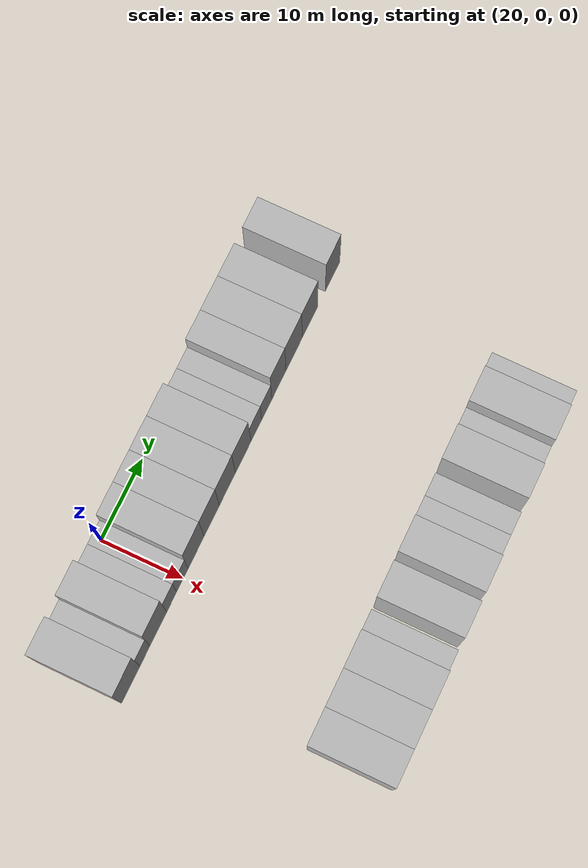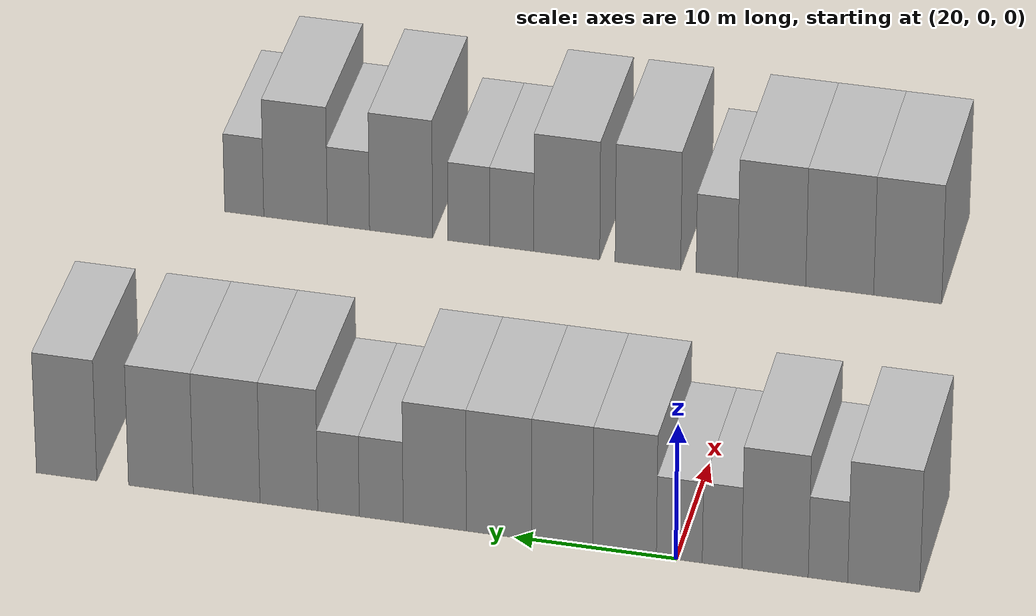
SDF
<sdf version="1.6">
 <world name="default">
  <model name="building_54">
   <static>1</static>
   <pose>25.0000 -12.6950 0 0.000000 0.000000 0.000000</pose>
   <link name="link">
    <pose>0 0 4.50 0 0 0</pose>
    <collision name="collision"><geometry><box><size>10.0000 4.3954 9.0000</size></box></geometry></collision>
    <visual name="visual">
     <cast_shadows>0</cast_shadows>
     <geometry><box><size>10.0000 4.3954 9.0000</size></box></geometry>
     <material>
      <script>
       <uri>model://HANNAS_wall/materials/scripts</uri>
       <uri>model://HANNAS_wall/materials/textures</uri>
       <name>vrc/HANNAS_wall</name>
      </script>
     </material>
    </visual>
   </link>
  </model>
  <model name="building_55">
   <static>1</static>
   <pose>25.0000 -9.2939 0 0.000000 0.000000 0.000000</pose>
   <link name="link">
    <pose>0 0 3.00 0 0 0</pose>
    <collision name="collision"><geometry><box><size>10.0000 2.4067 6.0000</size></box></geometry></collision>
    <visual name="visual">
     <cast_shadows>0</cast_shadows>
     <geometry><box><size>10.0000 2.4067 6.0000</size></box></geometry>
     <material>
      <script>
       <uri>model://HANNAS_wall/materials/scripts</uri>
       <uri>model://HANNAS_wall/materials/textures</uri>
       <name>vrc/HANNAS_wall</name>
      </script>
     </material>
    </visual>
   </link>
  </model>
  <model name="building_56">
   <static>1</static>
   <pose>25.0000 -6.0536 0 0.000000 0.000000 0.000000</pose>
   <link name="link">
    <pose>0 0 4.50 0 0 0</pose>
    <collision name="collision"><geometry><box><size>10.0000 4.0739 9.0000</size></box></geometry></collision>
    <visual name="visual">
     <cast_shadows>0</cast_shadows>
     <geometry><box><size>10.0000 4.0739 9.0000</size></box></geometry>
     <material>
      <script>
       <uri>model://HANNAS_wall/materials/scripts</uri>
       <uri>model://HANNAS_wall/materials/textures</uri>
       <name>vrc/HANNAS_wall</name>
      </script>
     </material>
    </visual>
   </link>
  </model>
  <model name="building_57">
   <static>1</static>
   <pose>25.0000 -2.8043 0 0.000000 0.000000 0.000000</pose>
   <link name="link">
    <pose>0 0 3.00 0 0 0</pose>
    <collision name="collision"><geometry><box><size>10.0000 2.4248 6.0000</size></box></geometry></collision>
    <visual name="visual">
     <cast_shadows>0</cast_shadows>
     <geometry><box><size>10.0000 2.4248 6.0000</size></box></geometry>
     <material>
      <script>
       <uri>model://HANNAS_wall/materials/scripts</uri>
       <uri>model://HANNAS_wall/materials/textures</uri>
       <name>vrc/HANNAS_wall</name>
      </script>
     </material>
    </visual>
   </link>
  </model>
  <model name="building_58">
   <static>1</static>
   <pose>25.0000 -0.1813 0 0.000000 0.000000 0.000000</pose>
   <link name="link">
    <pose>0 0 3.00 0 0 0</pose>
    <collision name="collision"><geometry><box><size>10.0000 2.8211 6.0000</size></box></geometry></collision>
    <visual name="visual">
     <cast_shadows>0</cast_shadows>
     <geometry><box><size>10.0000 2.8211 6.0000</size></box></geometry>
     <material>
      <script>
       <uri>model://HANNAS_wall/materials/scripts</uri>
       <uri>model://HANNAS_wall/materials/textures</uri>
       <name>vrc/HANNAS_wall</name>
      </script>
     </material>
    </visual>
   </link>
  </model>
  <model name="building_59">
   <static>1</static>
   <pose>25.0000 3.1887 0 0.000000 0.000000 0.000000</pose>
   <link name="link">
    <pose>0 0 4.50 0 0 0</pose>
    <collision name="collision"><geometry><box><size>10.0000 3.9189 9.0000</size></box></geometry></collision>
    <visual name="visual">
     <cast_shadows>0</cast_shadows>
     <geometry><box><size>10.0000 3.9189 9.0000</size></box></geometry>
     <material>
      <script>
       <uri>model://HANNAS_wall/materials/scripts</uri>
       <uri>model://HANNAS_wall/materials/textures</uri>
       <name>vrc/HANNAS_wall</name>
      </script>
     </material>
    </visual>
   </link>
  </model>
  <model name="building_60">
   <static>1</static>
   <pose>25.0000 7.0457 0 0.000000 0.000000 0.000000</pose>
   <link name="link">
    <pose>0 0 4.50 0 0 0</pose>
    <collision name="collision"><geometry><box><size>10.0000 3.7951 9.0000</size></box></geometry></collision>
    <visual name="visual">
     <cast_shadows>0</cast_shadows>
     <geometry><box><size>10.0000 3.7951 9.0000</size></box></geometry>
     <material>
      <script>
       <uri>model://HANNAS_wall/materials/scripts</uri>
       <uri>model://HANNAS_wall/materials/textures</uri>
       <name>vrc/HANNAS_wall</name>
      </script>
     </material>
    </visual>
   </link>
  </model>
  <model name="building_61">
   <static>1</static>
   <pose>25.0000 10.9666 0 0.000000 0.000000 0.000000</pose>
   <link name="link">
    <pose>0 0 4.50 0 0 0</pose>
    <collision name="collision"><geometry><box><size>10.0000 4.0467 9.0000</size></box></geometry></collision>
    <visual name="visual">
     <cast_shadows>0</cast_shadows>
     <geometry><box><size>10.0000 4.0467 9.0000</size></box></geometry>
     <material>
      <script>
       <uri>model://HANNAS_wall/materials/scripts</uri>
       <uri>model://HANNAS_wall/materials/textures</uri>
       <name>vrc/HANNAS_wall</name>
      </script>
     </material>
    </visual>
   </link>
  </model>
  <model name="building_62">
   <static>1</static>
   <pose>25.0000 14.9535 0 0.000000 0.000000 0.000000</pose>
   <link name="link">
    <pose>0 0 4.50 0 0 0</pose>
    <collision name="collision"><geometry><box><size>10.0000 3.9272 9.0000</size></box></geometry></collision>
    <visual name="visual">
     <cast_shadows>0</cast_shadows>
     <geometry><box><size>10.0000 3.9272 9.0000</size></box></geometry>
     <material>
      <script>
       <uri>model://HANNAS_wall/materials/scripts</uri>
       <uri>model://HANNAS_wall/materials/textures</uri>
       <name>vrc/HANNAS_wall</name>
      </script>
     </material>
    </visual>
   </link>
  </model>
  <model name="building_63">
   <static>1</static>
   <pose>25.0000 18.2872 0 0.000000 0.000000 0.000000</pose>
   <link name="link">
    <pose>0 0 3.00 0 0 0</pose>
    <collision name="collision"><geometry><box><size>10.0000 2.7402 6.0000</size></box></geometry></collision>
    <visual name="visual">
     <cast_shadows>0</cast_shadows>
     <geometry><box><size>10.0000 2.7402 6.0000</size></box></geometry>
     <material>
      <script>
       <uri>model://HANNAS_wall/materials/scripts</uri>
       <uri>model://HANNAS_wall/materials/textures</uri>
       <name>vrc/HANNAS_wall</name>
      </script>
     </material>
    </visual>
   </link>
  </model>
  <model name="building_64">
   <static>1</static>
   <pose>25.0000 20.9564 0 0.000000 0.000000 0.000000</pose>
   <link name="link">
    <pose>0 0 3.00 0 0 0</pose>
    <collision name="collision"><geometry><box><size>10.0000 2.5982 6.0000</size></box></geometry></collision>
    <visual name="visual">
     <cast_shadows>0</cast_shadows>
     <geometry><box><size>10.0000 2.5982 6.0000</size></box></geometry>
     <material>
      <script>
       <uri>model://HANNAS_wall/materials/scripts</uri>
       <uri>model://HANNAS_wall/materials/textures</uri>
       <name>vrc/HANNAS_wall</name>
      </script>
     </material>
    </visual>
   </link>
  </model>
  <model name="building_65">
   <static>1</static>
   <pose>25.0000 24.0666 0 0.000000 0.000000 0.000000</pose>
   <link name="link">
    <pose>0 0 4.50 0 0 0</pose>
    <collision name="collision"><geometry><box><size>10.0000 3.6220 9.0000</size></box></geometry></collision>
    <visual name="visual">
     <cast_shadows>0</cast_shadows>
     <geometry><box><size>10.0000 3.6220 9.0000</size></box></geometry>
     <material>
      <script>
       <uri>model://HANNAS_wall/materials/scripts</uri>
       <uri>model://HANNAS_wall/materials/textures</uri>
       <name>vrc/HANNAS_wall</name>
      </script>
     </material>
    </visual>
   </link>
  </model>
  <model name="building_66">
   <static>1</static>
   <pose>25.0000 27.9752 0 0.000000 0.000000 0.000000</pose>
   <link name="link">
    <pose>0 0 4.50 0 0 0</pose>
    <collision name="collision"><geometry><box><size>10.0000 4.1953 9.0000</size></box></geometry></collision>
    <visual name="visual">
     <cast_shadows>0</cast_shadows>
     <geometry><box><size>10.0000 4.1953 9.0000</size></box></geometry>
     <material>
      <script>
       <uri>model://HANNAS_wall/materials/scripts</uri>
       <uri>model://HANNAS_wall/materials/textures</uri>
       <name>vrc/HANNAS_wall</name>
      </script>
     </material>
    </visual>
   </link>
  </model>
  <model name="building_67">
   <static>1</static>
   <pose>25.0000 32.1123 0 0.000000 0.000000 0.000000</pose>
   <link name="link">
    <pose>0 0 4.50 0 0 0</pose>
    <collision name="collision"><geometry><box><size>10.0000 4.0789 9.0000</size></box></geometry></collision>
    <visual name="visual">
     <cast_shadows>0</cast_shadows>
     <geometry><box><size>10.0000 4.0789 9.0000</size></box></geometry>
     <material>
      <script>
       <uri>model://HANNAS_wall/materials/scripts</uri>
       <uri>model://HANNAS_wall/materials/textures</uri>
       <name>vrc/HANNAS_wall</name>
      </script>
     </material>
    </visual>
   </link>
  </model>
  <model name="building_68">
   <static>1</static>
   <pose>25.0000 38.0641 0 0.000000 0.000000 0.000000</pose>
   <link name="link">
    <pose>0 0 4.50 0 0 0</pose>
    <collision name="collision"><geometry><box><size>10.0000 3.8247 9.0000</size></box></geometry></collision>
    <visual name="visual">
     <cast_shadows>0</cast_shadows>
     <geometry><box><size>10.0000 3.8247 9.0000</size></box></geometry>
     <material>
      <script>
       <uri>model://HANNAS_wall/materials/scripts</uri>
       <uri>model://HANNAS_wall/materials/textures</uri>
       <name>vrc/HANNAS_wall</name>
      </script>
     </material>
    </visual>
   </link>
  </model>
  <model name="building_160">
   <static>1</static>
   <pose>55.0000 -8.6328 0 0.000000 0.000000 0.000000</pose>
   <link name="link">
    <pose>0 0 4.50 0 0 0</pose>
    <collision name="collision"><geometry><box><size>10.0000 4.3558 9.0000</size></box></geometry></collision>
    <visual name="visual">
     <cast_shadows>0</cast_shadows>
     <geometry><box><size>10.0000 4.3558 9.0000</size></box></geometry>
     <material>
      <script>
       <uri>model://HANNAS_wall/materials/scripts</uri>
       <uri>model://HANNAS_wall/materials/textures</uri>
       <name>vrc/HANNAS_wall</name>
      </script>
     </material>
    </visual>
   </link>
  </model>
  <model name="building_161">
   <static>1</static>
   <pose>55.0000 -4.2674 0 0.000000 0.000000 0.000000</pose>
   <link name="link">
    <pose>0 0 4.50 0 0 0</pose>
    <collision name="collision"><geometry><box><size>10.0000 4.3750 9.0000</size></box></geometry></collision>
    <visual name="visual">
     <cast_shadows>0</cast_shadows>
     <geometry><box><size>10.0000 4.3750 9.0000</size></box></geometry>
     <material>
      <script>
       <uri>model://HANNAS_wall/materials/scripts</uri>
       <uri>model://HANNAS_wall/materials/textures</uri>
       <name>vrc/HANNAS_wall</name>
      </script>
     </material>
    </visual>
   </link>
  </model>
  <model name="building_162">
   <static>1</static>
   <pose>55.0000 0.1154 0 0.000000 0.000000 0.000000</pose>
   <link name="link">
    <pose>0 0 4.50 0 0 0</pose>
    <collision name="collision"><geometry><box><size>10.0000 4.3906 9.0000</size></box></geometry></collision>
    <visual name="visual">
     <cast_shadows>0</cast_shadows>
     <geometry><box><size>10.0000 4.3906 9.0000</size></box></geometry>
     <material>
      <script>
       <uri>model://HANNAS_wall/materials/scripts</uri>
       <uri>model://HANNAS_wall/materials/textures</uri>
       <name>vrc/HANNAS_wall</name>
      </script>
     </material>
    </visual>
   </link>
  </model>
  <model name="building_163">
   <static>1</static>
   <pose>55.0000 3.6528 0 0.000000 0.000000 0.000000</pose>
   <link name="link">
    <pose>0 0 3.00 0 0 0</pose>
    <collision name="collision"><geometry><box><size>10.0000 2.6843 6.0000</size></box></geometry></collision>
    <visual name="visual">
     <cast_shadows>0</cast_shadows>
     <geometry><box><size>10.0000 2.6843 6.0000</size></box></geometry>
     <material>
      <script>
       <uri>model://HANNAS_wall/materials/scripts</uri>
       <uri>model://HANNAS_wall/materials/textures</uri>
       <name>vrc/HANNAS_wall</name>
      </script>
     </material>
    </visual>
   </link>
  </model>
  <model name="building_164">
   <static>1</static>
   <pose>55.0000 8.1226 0 0.000000 0.000000 0.000000</pose>
   <link name="link">
    <pose>0 0 4.50 0 0 0</pose>
    <collision name="collision"><geometry><box><size>10.0000 4.2552 9.0000</size></box></geometry></collision>
    <visual name="visual">
     <cast_shadows>0</cast_shadows>
     <geometry><box><size>10.0000 4.2552 9.0000</size></box></geometry>
     <material>
      <script>
       <uri>model://HANNAS_wall/materials/scripts</uri>
       <uri>model://HANNAS_wall/materials/textures</uri>
       <name>vrc/HANNAS_wall</name>
      </script>
     </material>
    </visual>
   </link>
  </model>
  <model name="building_165">
   <static>1</static>
   <pose>55.0000 13.3963 0 0.000000 0.000000 0.000000</pose>
   <link name="link">
    <pose>0 0 4.50 0 0 0</pose>
    <collision name="collision"><geometry><box><size>10.0000 4.2923 9.0000</size></box></geometry></collision>
    <visual name="visual">
     <cast_shadows>0</cast_shadows>
     <geometry><box><size>10.0000 4.2923 9.0000</size></box></geometry>
     <material>
      <script>
       <uri>model://HANNAS_wall/materials/scripts</uri>
       <uri>model://HANNAS_wall/materials/textures</uri>
       <name>vrc/HANNAS_wall</name>
      </script>
     </material>
    </visual>
   </link>
  </model>
  <model name="building_166">
   <static>1</static>
   <pose>55.0000 16.9859 0 0.000000 0.000000 0.000000</pose>
   <link name="link">
    <pose>0 0 3.00 0 0 0</pose>
    <collision name="collision"><geometry><box><size>10.0000 2.8869 6.0000</size></box></geometry></collision>
    <visual name="visual">
     <cast_shadows>0</cast_shadows>
     <geometry><box><size>10.0000 2.8869 6.0000</size></box></geometry>
     <material>
      <script>
       <uri>model://HANNAS_wall/materials/scripts</uri>
       <uri>model://HANNAS_wall/materials/textures</uri>
       <name>vrc/HANNAS_wall</name>
      </script>
     </material>
    </visual>
   </link>
  </model>
  <model name="building_167">
   <static>1</static>
   <pose>55.0000 19.7965 0 0.000000 0.000000 0.000000</pose>
   <link name="link">
    <pose>0 0 3.00 0 0 0</pose>
    <collision name="collision"><geometry><box><size>10.0000 2.7344 6.0000</size></box></geometry></collision>
    <visual name="visual">
     <cast_shadows>0</cast_shadows>
     <geometry><box><size>10.0000 2.7344 6.0000</size></box></geometry>
     <material>
      <script>
       <uri>model://HANNAS_wall/materials/scripts</uri>
       <uri>model://HANNAS_wall/materials/textures</uri>
       <name>vrc/HANNAS_wall</name>
      </script>
     </material>
    </visual>
   </link>
  </model>
  <model name="building_168">
   <static>1</static>
   <pose>55.0000 24.2345 0 0.000000 0.000000 0.000000</pose>
   <link name="link">
    <pose>0 0 4.50 0 0 0</pose>
    <collision name="collision"><geometry><box><size>10.0000 4.1415 9.0000</size></box></geometry></collision>
    <visual name="visual">
     <cast_shadows>0</cast_shadows>
     <geometry><box><size>10.0000 4.1415 9.0000</size></box></geometry>
     <material>
      <script>
       <uri>model://HANNAS_wall/materials/scripts</uri>
       <uri>model://HANNAS_wall/materials/textures</uri>
       <name>vrc/HANNAS_wall</name>
      </script>
     </material>
    </visual>
   </link>
  </model>
  <model name="building_169">
   <static>1</static>
   <pose>55.0000 27.6902 0 0.000000 0.000000 0.000000</pose>
   <link name="link">
    <pose>0 0 3.00 0 0 0</pose>
    <collision name="collision"><geometry><box><size>10.0000 2.7698 6.0000</size></box></geometry></collision>
    <visual name="visual">
     <cast_shadows>0</cast_shadows>
     <geometry><box><size>10.0000 2.7698 6.0000</size></box></geometry>
     <material>
      <script>
       <uri>model://HANNAS_wall/materials/scripts</uri>
       <uri>model://HANNAS_wall/materials/textures</uri>
       <name>vrc/HANNAS_wall</name>
      </script>
     </material>
    </visual>
   </link>
  </model>
  <model name="building_170">
   <static>1</static>
   <pose>55.0000 31.1761 0 0.000000 0.000000 0.000000</pose>
   <link name="link">
    <pose>0 0 4.50 0 0 0</pose>
    <collision name="collision"><geometry><box><size>10.0000 4.2020 9.0000</size></box></geometry></collision>
    <visual name="visual">
     <cast_shadows>0</cast_shadows>
     <geometry><box><size>10.0000 4.2020 9.0000</size></box></geometry>
     <material>
      <script>
       <uri>model://HANNAS_wall/materials/scripts</uri>
       <uri>model://HANNAS_wall/materials/textures</uri>
       <name>vrc/HANNAS_wall</name>
      </script>
     </material>
    </visual>
   </link>
  </model>
  <model name="building_171">
   <static>1</static>
   <pose>55.0000 34.5679 0 0.000000 0.000000 0.000000</pose>
   <link name="link">
    <pose>0 0 3.00 0 0 0</pose>
    <collision name="collision"><geometry><box><size>10.0000 2.5816 6.0000</size></box></geometry></collision>
    <visual name="visual">
     <cast_shadows>0</cast_shadows>
     <geometry><box><size>10.0000 2.5816 6.0000</size></box></geometry>
     <material>
      <script>
       <uri>model://HANNAS_wall/materials/scripts</uri>
       <uri>model://HANNAS_wall/materials/textures</uri>
       <name>vrc/HANNAS_wall</name>
      </script>
     </material>
    </visual>
   </link>
  </model>
 </world>
</sdf>
